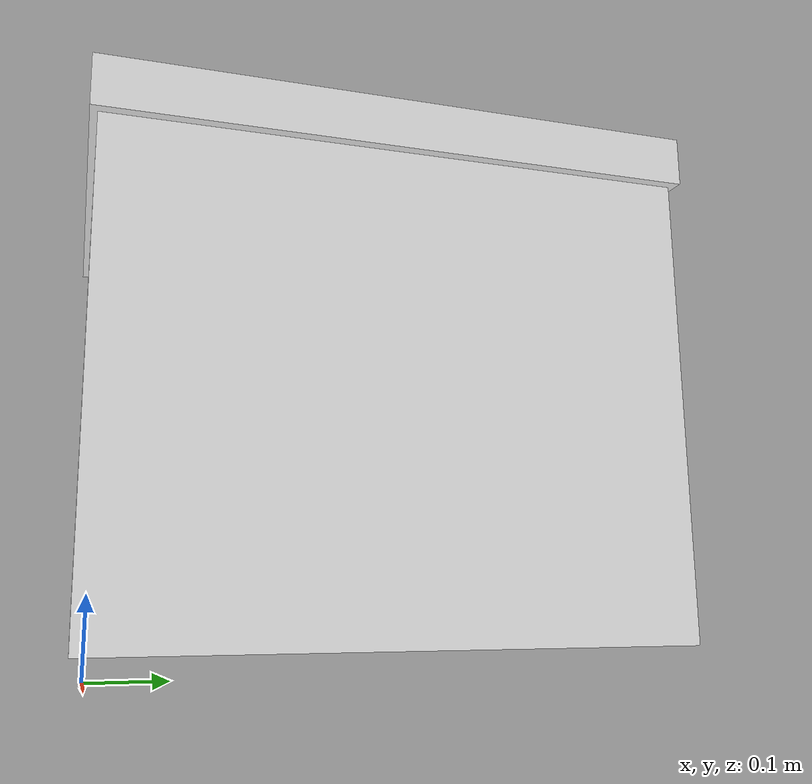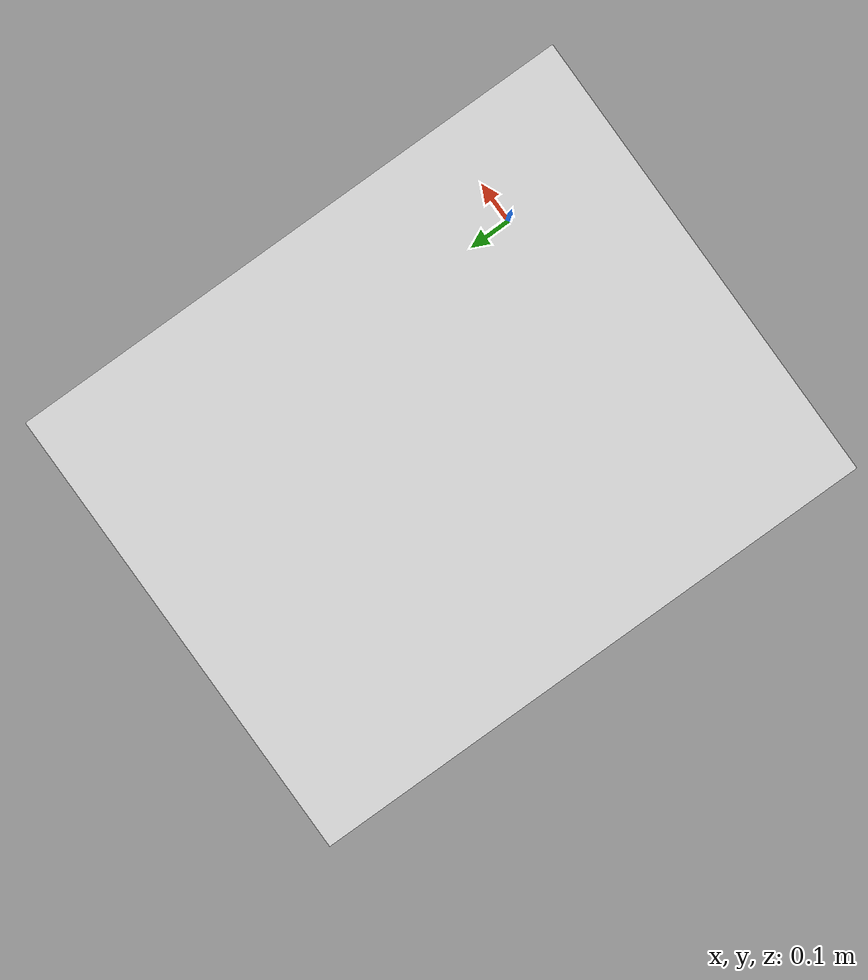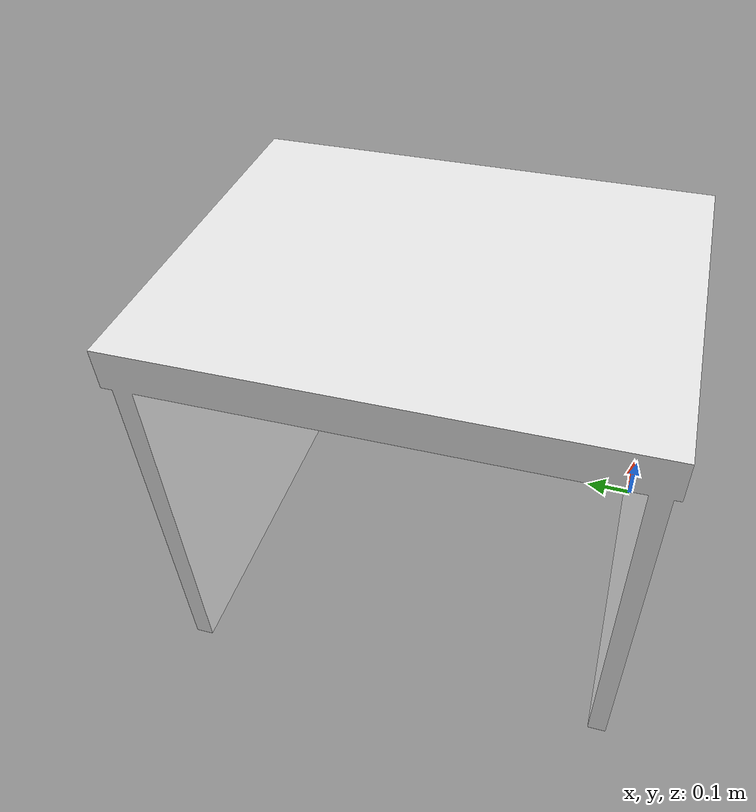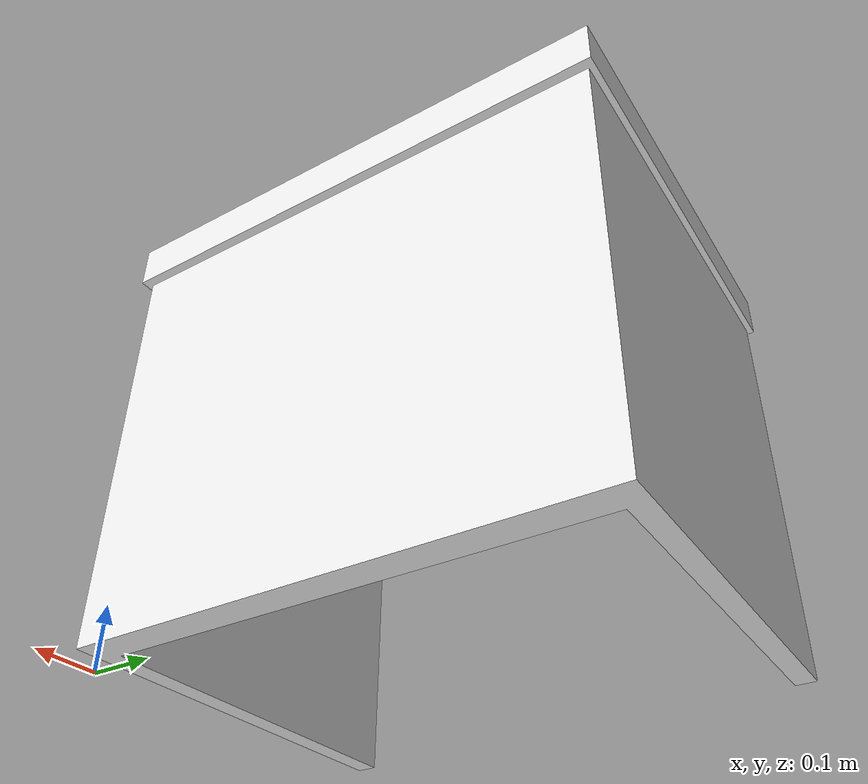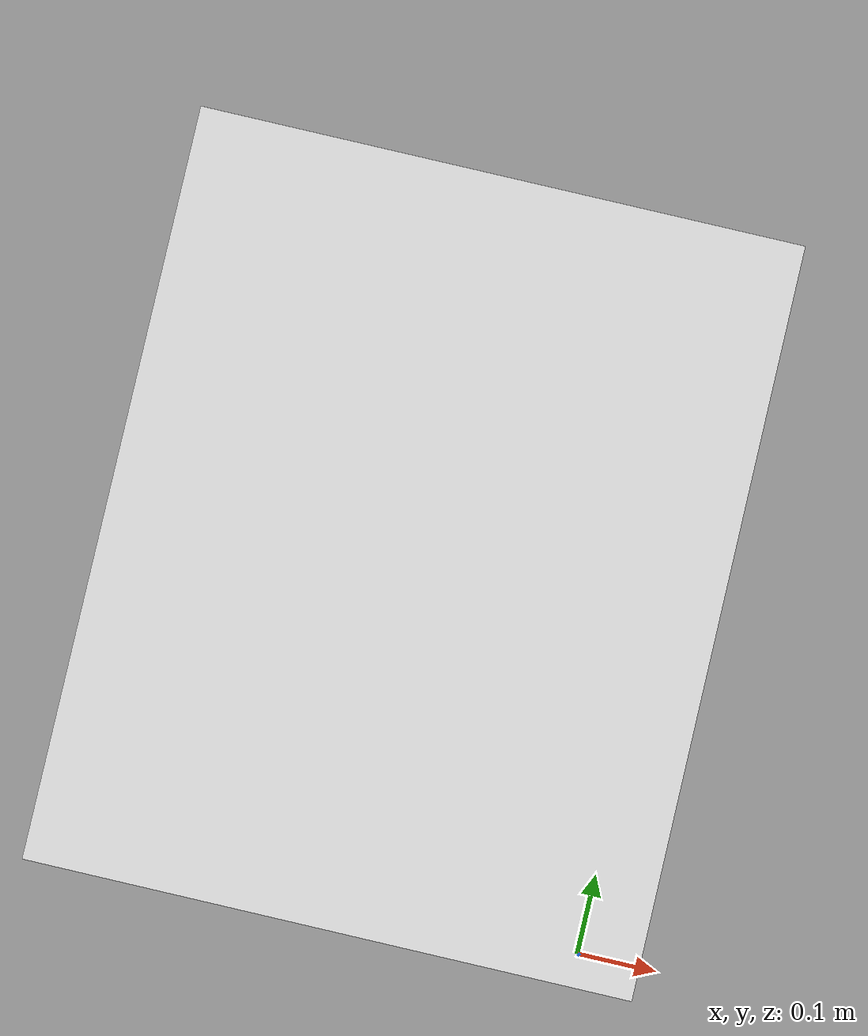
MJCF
<mujoco model="ben_table">
  <asset>
    <mesh file="meshes/ben_table.stl" name="ben_table"/>
    <texture file="../textures/white-plaster.png" name="texplaster"/>
    <material name="plaster" reflectance="0.7" texrepeat="5 5" texture="texplaster" texuniform="true"/>
  </asset>
  <worldbody>
    <body name="ben_table">
      <body name="collision">
        <geom pos="0 0 0" mesh="ben_table" type="mesh" density="5000" group="1" material="plaster" condim="6"/>
      </body>
      <body name="visual">
        <geom pos="0 0 0" mesh="ben_table" type="mesh" conaffinity="0" contype="0" group="0" mass="0.0001"/>
      </body>
      <site rgba="0 0 0 0" size="0.005" pos="0 0 -0.06" name="bottom_site"/>
      <site rgba="0 0 0 0" size="0.005" pos="0 0 0.04" name="top_site"/>
      <site rgba="0 0 0 0" size="0.005" pos="0.025 0.025 0" name="horizontal_radius_site"/>
    </body>
  </worldbody>
</mujoco>
